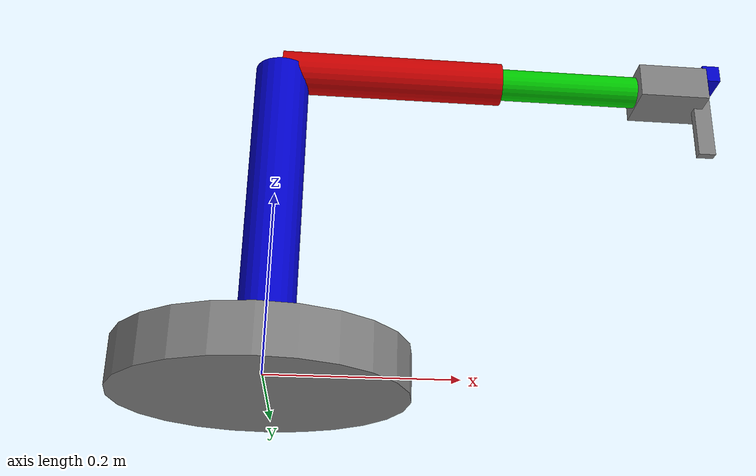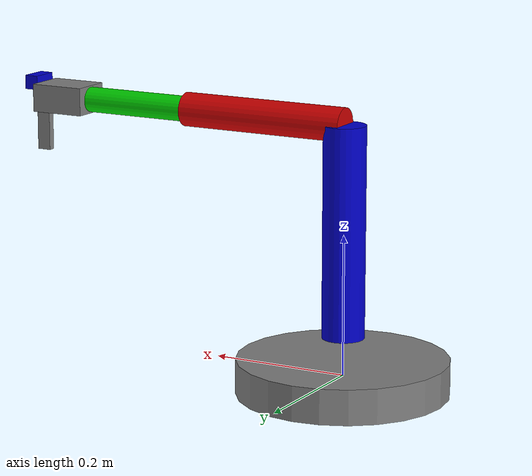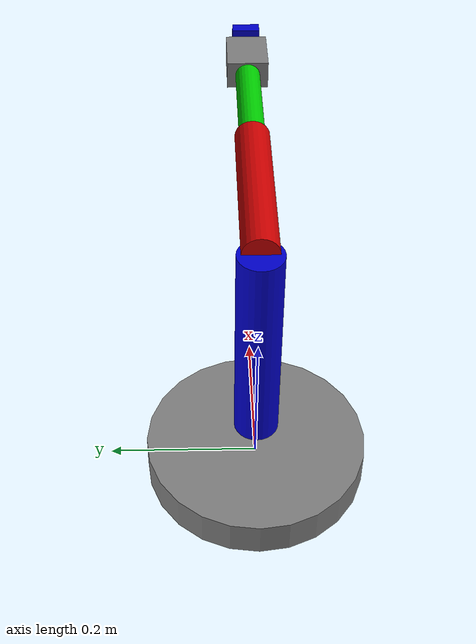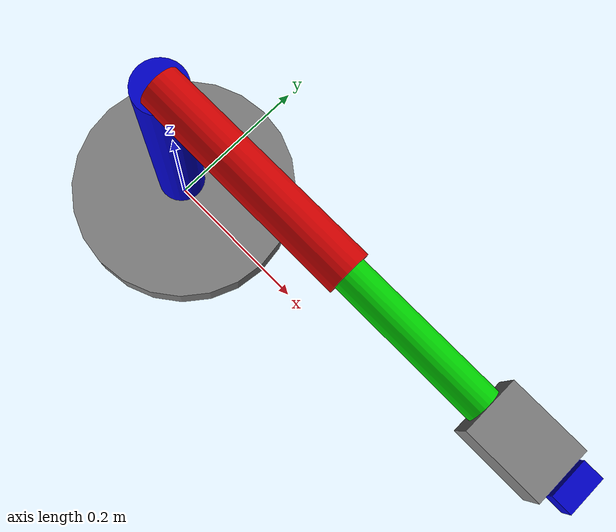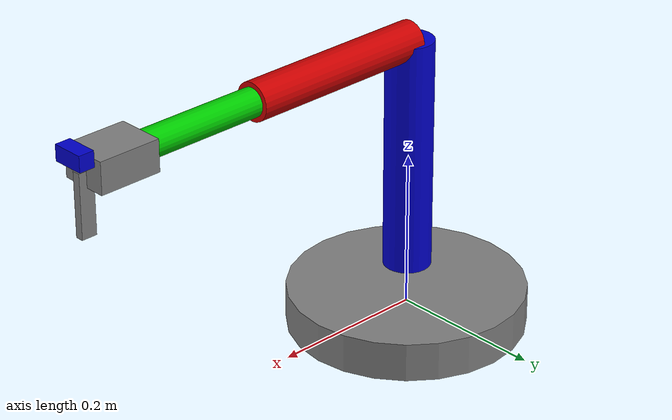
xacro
<?xml version="1.0"?>
<robot xmlns:xacro="http://www.ros.org/wiki/xacro" name="ml_picking_robot">

  <!-- Same properties as before -->
  <xacro:property name="PI" value="3.14159265359"/>
  <xacro:property name="base_height" value="0.05"/>
  <xacro:property name="base_radius" value="0.15"/>
  <xacro:property name="link_radius" value="0.03"/>
  <xacro:property name="link1_length" value="0.3"/>
  <xacro:property name="link2_length" value="0.25"/>
  <xacro:property name="link3_length" value="0.2"/>

  <!-- Materials -->
  <material name="blue"><color rgba="0.0 0.0 0.8 1.0"/></material>
  <material name="red"><color rgba="0.8 0.0 0.0 1.0"/></material>
  <material name="green"><color rgba="0.0 0.8 0.0 1.0"/></material>
  <material name="grey"><color rgba="0.5 0.5 0.5 1.0"/></material>

  <!-- BASE LINK -->
  <link name="base_link">
    <visual>
      <geometry><cylinder radius="${base_radius}" length="${base_height}"/></geometry>
      <material name="grey"/>
    </visual>
    <collision>
      <geometry><cylinder radius="${base_radius}" length="${base_height}"/></geometry>
    </collision>
    <inertial>
      <mass value="5.0"/>
      <inertia ixx="0.1" ixy="0.0" ixz="0.0" iyy="0.1" iyz="0.0" izz="0.1"/>
    </inertial>
  </link>

  <!-- LINK 1 -->
  <joint name="base_joint" type="revolute">
    <parent link="base_link"/>
    <child link="link1"/>
    <origin xyz="0 0 ${base_height/2 + link_radius}" rpy="0 0 0"/>
    <axis xyz="0 0 1"/>
    <limit effort="100" lower="${-PI}" upper="${PI}" velocity="1.0"/>
  </joint>

  <link name="link1">
    <visual>
      <geometry><cylinder radius="${link_radius}" length="${link1_length}"/></geometry>
      <origin xyz="0 0 ${link1_length/2}" rpy="0 0 0"/>
      <material name="blue"/>
    </visual>
    <collision>
      <geometry><cylinder radius="${link_radius}" length="${link1_length}"/></geometry>
      <origin xyz="0 0 ${link1_length/2}" rpy="0 0 0"/>
    </collision>
    <inertial>
      <mass value="2.0"/>
      <origin xyz="0 0 ${link1_length/2}" rpy="0 0 0"/>
      <inertia ixx="0.05" ixy="0.0" ixz="0.0" iyy="0.05" iyz="0.0" izz="0.01"/>
    </inertial>
  </link>

  <!-- LINK 2 -->
  <joint name="shoulder_joint" type="revolute">
    <parent link="link1"/>
    <child link="link2"/>
    <origin xyz="0 0 ${link1_length}" rpy="0 0 0"/>
    <axis xyz="0 1 0"/>
    <limit effort="50" lower="${-PI/2}" upper="${PI/2}" velocity="1.0"/>
  </joint>

  <link name="link2">
    <visual>
      <geometry><cylinder radius="${link_radius * 0.8}" length="${link2_length}"/></geometry>
      <origin xyz="${link2_length/2} 0 0" rpy="0 ${PI/2} 0"/>
      <material name="red"/>
    </visual>
    <collision>
      <geometry><cylinder radius="${link_radius * 0.8}" length="${link2_length}"/></geometry>
      <origin xyz="${link2_length/2} 0 0" rpy="0 ${PI/2} 0"/>
    </collision>
    <inertial>
      <mass value="1.5"/>
      <origin xyz="${link2_length/2} 0 0" rpy="0 ${PI/2} 0"/>
      <inertia ixx="0.02" ixy="0.0" ixz="0.0" iyy="0.02" iyz="0.0" izz="0.01"/>
    </inertial>
  </link>

  <!-- LINK 3 -->
  <joint name="elbow_joint" type="revolute">
    <parent link="link2"/>
    <child link="link3"/>
    <origin xyz="${link2_length} 0 0" rpy="0 0 0"/>
    <axis xyz="0 1 0"/>
    <limit effort="30" lower="${-PI/2}" upper="${PI/2}" velocity="1.0"/>
  </joint>

  <link name="link3">
    <visual>
      <geometry><cylinder radius="${link_radius * 0.6}" length="${link3_length}"/></geometry>
      <origin xyz="${link3_length/2} 0 0" rpy="0 ${PI/2} 0"/>
      <material name="green"/>
    </visual>
    <collision>
      <geometry><cylinder radius="${link_radius * 0.6}" length="${link3_length}"/></geometry>
      <origin xyz="${link3_length/2} 0 0" rpy="0 ${PI/2} 0"/>
    </collision>
    <inertial>
      <mass value="1.0"/>
      <origin xyz="${link3_length/2} 0 0" rpy="0 ${PI/2} 0"/>
      <inertia ixx="0.01" ixy="0.0" ixz="0.0" iyy="0.01" iyz="0.0" izz="0.005"/>
    </inertial>
  </link>

  <!-- GRIPPER BASE -->
  <joint name="wrist_joint" type="revolute">
    <parent link="link3"/>
    <child link="gripper_base"/>
    <origin xyz="${link3_length} 0 0" rpy="0 0 0"/>
    <axis xyz="1 0 0"/>
    <limit effort="10" lower="${-PI}" upper="${PI}" velocity="2.0"/>
  </joint>

  <link name="gripper_base">
    <visual>
      <geometry><box size="0.08 0.06 0.04"/></geometry>
      <material name="grey"/>
    </visual>
    <collision>
      <geometry><box size="0.08 0.06 0.04"/></geometry>
    </collision>
    <inertial>
      <mass value="0.5"/>
      <inertia ixx="0.001" ixy="0.0" ixz="0.0" iyy="0.001" iyz="0.0" izz="0.001"/>
    </inertial>
  </link>

  <!-- GRIPPER FINGERS -->
  <joint name="left_finger_joint" type="prismatic">
    <parent link="gripper_base"/>
    <child link="left_finger"/>
    <origin xyz="0.04 0 0" rpy="0 0 0"/>
    <axis xyz="0 1 0"/>
    <limit effort="20" lower="0.0" upper="0.04" velocity="0.1"/>
  </joint>

  <link name="left_finger">
    <visual>
      <geometry><box size="0.02 0.01 0.08"/></geometry>
      <origin xyz="0 0 -0.04" rpy="0 0 0"/>
      <material name="grey"/>
    </visual>
    <collision>
      <geometry><box size="0.02 0.01 0.08"/></geometry>
      <origin xyz="0 0 -0.04" rpy="0 0 0"/>
    </collision>
    <inertial>
      <mass value="0.1"/>
      <origin xyz="0 0 -0.04" rpy="0 0 0"/>
      <inertia ixx="0.0001" ixy="0.0" ixz="0.0" iyy="0.0001" iyz="0.0" izz="0.0001"/>
    </inertial>
  </link>

  <joint name="right_finger_joint" type="prismatic">
    <parent link="gripper_base"/>
    <child link="right_finger"/>
    <origin xyz="0.04 0 0" rpy="0 0 0"/>
    <axis xyz="0 1 0"/>
    <limit effort="20" lower="-0.04" upper="0.0" velocity="0.1"/>
    <mimic joint="left_finger_joint" multiplier="-1"/>
  </joint>

  <link name="right_finger">
    <visual>
      <geometry><box size="0.02 0.01 0.08"/></geometry>
      <origin xyz="0 0 -0.04" rpy="0 0 0"/>
      <material name="grey"/>
    </visual>
    <collision>
      <geometry><box size="0.02 0.01 0.08"/></geometry>
      <origin xyz="0 0 -0.04" rpy="0 0 0"/>
    </collision>
    <inertial>
      <mass value="0.1"/>
      <origin xyz="0 0 -0.04" rpy="0 0 0"/>
      <inertia ixx="0.0001" ixy="0.0" ixz="0.0" iyy="0.0001" iyz="0.0" izz="0.0001"/>
    </inertial>
  </link>

  <!-- CAMERA -->
  <joint name="camera_joint" type="fixed">
    <parent link="gripper_base"/>
    <child link="camera_link"/>
    <origin xyz="0.05 0 0.02" rpy="0 0 0"/>
  </joint>

  <link name="camera_link">
    <visual>
      <geometry><box size="0.02 0.04 0.02"/></geometry>
      <material name="blue"/>
    </visual>
    <collision>
      <geometry><box size="0.02 0.04 0.02"/></geometry>
    </collision>
    <inertial>
      <mass value="0.1"/>
      <inertia ixx="0.0001" ixy="0.0" ixz="0.0" iyy="0.0001" iyz="0.0" izz="0.0001"/>
    </inertial>
  </link>

  <!-- GAZEBO PLUGINS -->
  <gazebo reference="camera_link">
    <sensor type="camera" name="camera1">
      <update_rate>30.0</update_rate>
      <camera name="head">
        <horizontal_fov>1.3962634</horizontal_fov>
        <image>
          <width>640</width>
          <height>480</height>
          <format>R8G8B8</format>
        </image>
        <clip>
          <near>0.02</near>
          <far>300</far>
        </clip>
      </camera>
      <plugin name="camera_controller" filename="libgazebo_ros_camera.so">
        <ros><namespace>/camera</namespace></ros>
        <camera_name>camera</camera_name>
        <frame_name>camera_link</frame_name>
      </plugin>
    </sensor>
  </gazebo>

  <!-- Joint state publisher -->
  <gazebo>
    <plugin name="gazebo_ros_joint_state_publisher" filename="libgazebo_ros_joint_state_publisher.so">
      <ros><namespace>/</namespace><remapping>~/out:=joint_states</remapping></ros>
      <update_rate>50</update_rate>
      <joint_name>base_joint</joint_name>
      <joint_name>shoulder_joint</joint_name>
      <joint_name>elbow_joint</joint_name>
      <joint_name>wrist_joint</joint_name>
      <joint_name>left_finger_joint</joint_name>
      <joint_name>right_finger_joint</joint_name>
    </plugin>
  </gazebo>

</robot>
